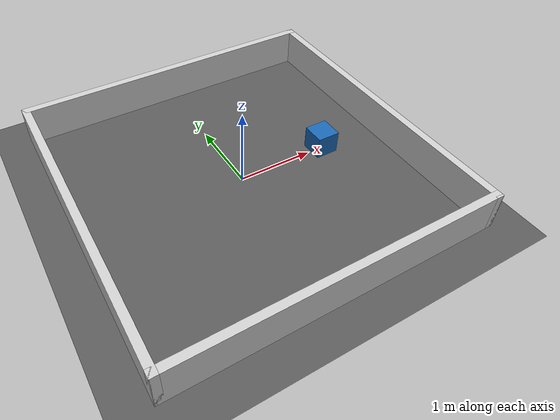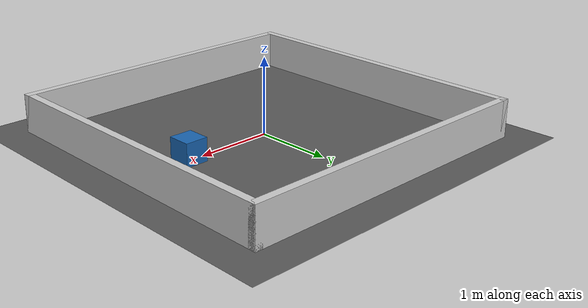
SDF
<?xml version="1.0"?>
<!-- Une salle de 4 m × 4 m, fermée, avec une caisse devant le robot. Tout est décrit ici :
     aucun modèle à télécharger (le lab n'a pas d'accès à Internet). -->
<sdf version="1.9">
  <world name="salle">
    <!-- Un pas de physique de 4 ms (250 par seconde) : assez fin pour un robot qui roule à 0,5 m/s,
         et quatre fois moins de calcul qu'avec 1 ms -->
    <physics name="4ms" type="ignored">
      <max_step_size>0.004</max_step_size>
      <real_time_factor>1.0</real_time_factor>
    </physics>

    <!-- Les « systèmes » du simulateur : physique, commandes (apparition du robot),
         diffusion de la scène (interface, ROS) et capteurs (rendu du laser) -->
    <plugin filename="gz-sim-physics-system" name="gz::sim::systems::Physics"/>
    <plugin filename="gz-sim-user-commands-system" name="gz::sim::systems::UserCommands"/>
    <plugin filename="gz-sim-scene-broadcaster-system" name="gz::sim::systems::SceneBroadcaster"/>
    <plugin filename="gz-sim-sensors-system" name="gz::sim::systems::Sensors">
      <render_engine>ogre2</render_engine>
    </plugin>

    <light name="soleil" type="directional">
      <cast_shadows>false</cast_shadows>
      <pose>0 0 10 0 0 0</pose>
      <diffuse>0.9 0.9 0.9 1</diffuse>
      <direction>-0.3 0.2 -1</direction>
    </light>

    <model name="sol">
      <static>true</static>
      <link name="link">
        <collision name="collision">
          <geometry><plane><normal>0 0 1</normal><size>10 10</size></plane></geometry>
          <surface><friction><ode><mu>1.0</mu><mu2>1.0</mu2></ode></friction></surface>
        </collision>
        <visual name="visual">
          <geometry><plane><normal>0 0 1</normal><size>10 10</size></plane></geometry>
          <material><ambient>0.35 0.35 0.35 1</ambient><diffuse>0.35 0.35 0.35 1</diffuse></material>
        </visual>
      </link>
    </model>

    <model name="mur_nord">
      <static>true</static>
      <pose>2.05 0 0.25 0 0 0</pose>
      <link name="link">
        <collision name="collision"><geometry><box><size>0.1 4.2 0.5</size></box></geometry></collision>
        <visual name="visual">
          <geometry><box><size>0.1 4.2 0.5</size></box></geometry>
          <material><ambient>0.8 0.8 0.8 1</ambient><diffuse>0.8 0.8 0.8 1</diffuse></material>
        </visual>
      </link>
    </model>
    <model name="mur_sud">
      <static>true</static>
      <pose>-2.05 0 0.25 0 0 0</pose>
      <link name="link">
        <collision name="collision"><geometry><box><size>0.1 4.2 0.5</size></box></geometry></collision>
        <visual name="visual">
          <geometry><box><size>0.1 4.2 0.5</size></box></geometry>
          <material><ambient>0.8 0.8 0.8 1</ambient><diffuse>0.8 0.8 0.8 1</diffuse></material>
        </visual>
      </link>
    </model>
    <model name="mur_est">
      <static>true</static>
      <pose>0 -2.05 0.25 0 0 0</pose>
      <link name="link">
        <collision name="collision"><geometry><box><size>4.2 0.1 0.5</size></box></geometry></collision>
        <visual name="visual">
          <geometry><box><size>4.2 0.1 0.5</size></box></geometry>
          <material><ambient>0.8 0.8 0.8 1</ambient><diffuse>0.8 0.8 0.8 1</diffuse></material>
        </visual>
      </link>
    </model>
    <model name="mur_ouest">
      <static>true</static>
      <pose>0 2.05 0.25 0 0 0</pose>
      <link name="link">
        <collision name="collision"><geometry><box><size>4.2 0.1 0.5</size></box></geometry></collision>
        <visual name="visual">
          <geometry><box><size>4.2 0.1 0.5</size></box></geometry>
          <material><ambient>0.8 0.8 0.8 1</ambient><diffuse>0.8 0.8 0.8 1</diffuse></material>
        </visual>
      </link>
    </model>
    <!-- La caisse : sa face avant est à 1,05 m du centre du robot, droit devant -->
    <model name="caisse">
      <static>true</static>
      <pose>1.2 0 0.15 0 0 0</pose>
      <link name="link">
        <collision name="collision"><geometry><box><size>0.3 0.3 0.3</size></box></geometry></collision>
        <visual name="visual">
          <geometry><box><size>0.3 0.3 0.3</size></box></geometry>
          <material><ambient>0.1 0.4 0.7 1</ambient><diffuse>0.1 0.4 0.7 1</diffuse></material>
        </visual>
      </link>
    </model>
  </world>
</sdf>
